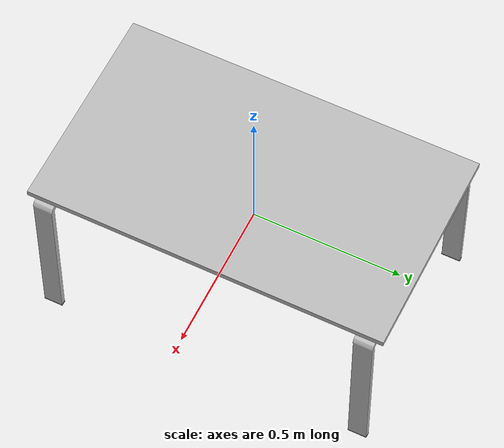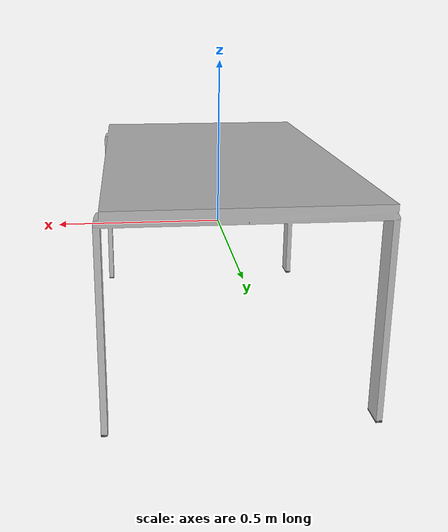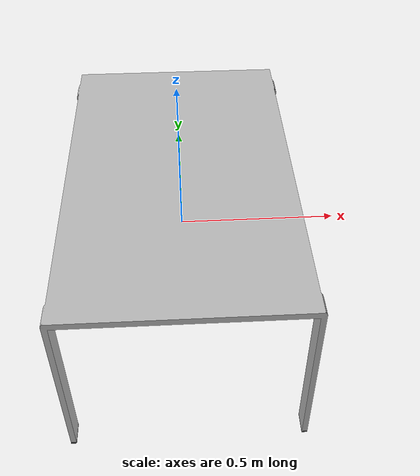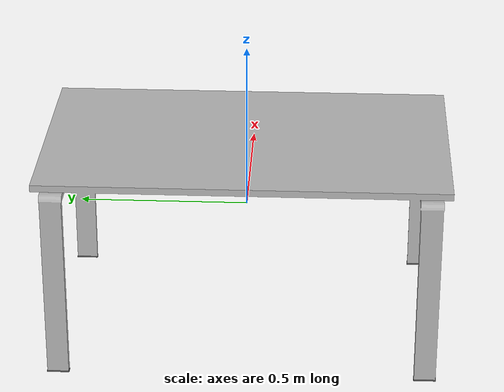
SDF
<?xml version='1.0'?>
<sdf version='1.5'>
  <model name="table_rectangular_low">
    <pose>0 0 0 0 0 0</pose>
    <static>false</static>
    <link name='model_body'>
      <visual name="visual">
        <geometry>
          <mesh>
            <uri>model://robert_gazebo/meshes/table_rectangular_low_visual.dae</uri>
            <scale>1 1 1</scale>
          </mesh>
         </geometry>
      </visual>

      <collision name="collision">
        <geometry>
          <mesh>
            <uri>model://robert_gazebo/meshes/table_rectangular_low_collision.dae</uri>
            <scale>1 1 1</scale>
          </mesh>
        </geometry>
      </collision>

      <inertial>
        <pose> 0 0 0 0 0 0</pose>
        <inertia>
          <ixx>1.45</ixx>
          <ixy>0</ixy>
          <ixz>0</ixz>
          <iyy>0.55</iyy>
          <iyz>0</iyz>
          <izz>1.5</izz>
        </inertia>
        <mass>10.0</mass>
      </inertial>
    </link>
  </model>
</sdf>
